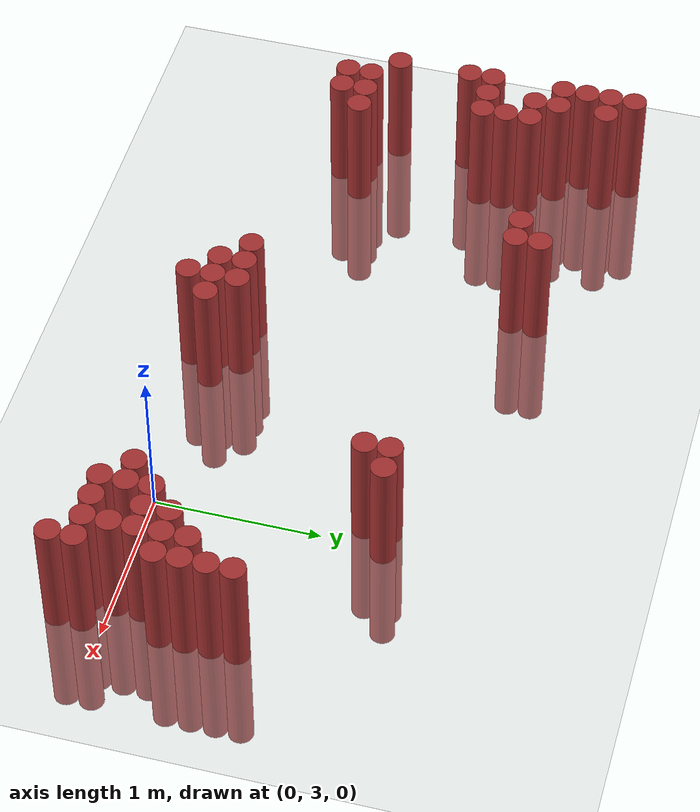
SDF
<sdf version="1.6">
 <world name="default">
  <model name="ground_plane">
   <static>1</static>
   <link name="link">
    <collision name="collision">
     <geometry><plane><normal>0 0 1</normal><size>100 100</size></plane></geometry>
     <surface><friction><ode><mu>100</mu><mu2>50</mu2></ode></friction></surface>
    </collision>
    <visual name="visual">
     <cast_shadows>0</cast_shadows>
     <geometry><plane><normal>0 0 1</normal><size>100 100</size></plane></geometry>
     <material>
      <script><uri>file://media/materials/scripts/gazebo.material</uri><name>Gazebo/Grey</name></script>
     </material>
    </visual>
   </link>
  </model>
  <model name="unit_cylinder_273">
   <static>1</static>
   <pose>-3.275000 3.625000 0.000000 0.000000 0.000000 0.000000</pose>
   <link name="link">
    <inertial>
     <mass>1</mass>
     <inertia><ixx>0.145833</ixx><ixy>0</ixy><ixz>0</ixz><iyy>0.145833</iyy><iyz>0</iyz><izz>0.125</izz></inertia>
    </inertial>
    <collision name="collision">
     <geometry><cylinder><radius>0.075000</radius><length>1.5</length></cylinder></geometry>
    </collision>
    <visual name="visual">
     <geometry><cylinder><radius>0.075000</radius><length>1.5</length></cylinder></geometry>
     <material>
      <ambient>0.648000 0.192000 0.192000 1</ambient>
      <diffuse>0.648000 0.192000 0.192000 1</diffuse>
     </material>
     <material>
      <script><name>Gazebo/Grey</name><uri>file://media/materials/scripts/gazebo.material</uri></script>
     </material>
    </visual>
   </link>
  </model>
  <model name="unit_cylinder_274">
   <static>1</static>
   <pose>-3.275000 4.075000 0.000000 0.000000 0.000000 0.000000</pose>
   <link name="link">
    <inertial>
     <mass>1</mass>
     <inertia><ixx>0.145833</ixx><ixy>0</ixy><ixz>0</ixz><iyy>0.145833</iyy><iyz>0</iyz><izz>0.125</izz></inertia>
    </inertial>
    <collision name="collision">
     <geometry><cylinder><radius>0.075000</radius><length>1.5</length></cylinder></geometry>
    </collision>
    <visual name="visual">
     <geometry><cylinder><radius>0.075000</radius><length>1.5</length></cylinder></geometry>
     <material>
      <ambient>0.648000 0.192000 0.192000 1</ambient>
      <diffuse>0.648000 0.192000 0.192000 1</diffuse>
     </material>
     <material>
      <script><name>Gazebo/Grey</name><uri>file://media/materials/scripts/gazebo.material</uri></script>
     </material>
    </visual>
   </link>
  </model>
  <model name="unit_cylinder_275">
   <static>1</static>
   <pose>-3.275000 4.225000 0.000000 0.000000 0.000000 0.000000</pose>
   <link name="link">
    <inertial>
     <mass>1</mass>
     <inertia><ixx>0.145833</ixx><ixy>0</ixy><ixz>0</ixz><iyy>0.145833</iyy><iyz>0</iyz><izz>0.125</izz></inertia>
    </inertial>
    <collision name="collision">
     <geometry><cylinder><radius>0.075000</radius><length>1.5</length></cylinder></geometry>
    </collision>
    <visual name="visual">
     <geometry><cylinder><radius>0.075000</radius><length>1.5</length></cylinder></geometry>
     <material>
      <ambient>0.648000 0.192000 0.192000 1</ambient>
      <diffuse>0.648000 0.192000 0.192000 1</diffuse>
     </material>
     <material>
      <script><name>Gazebo/Grey</name><uri>file://media/materials/scripts/gazebo.material</uri></script>
     </material>
    </visual>
   </link>
  </model>
  <model name="unit_cylinder_276">
   <static>1</static>
   <pose>-3.275000 4.675000 0.000000 0.000000 0.000000 0.000000</pose>
   <link name="link">
    <inertial>
     <mass>1</mass>
     <inertia><ixx>0.145833</ixx><ixy>0</ixy><ixz>0</ixz><iyy>0.145833</iyy><iyz>0</iyz><izz>0.125</izz></inertia>
    </inertial>
    <collision name="collision">
     <geometry><cylinder><radius>0.075000</radius><length>1.5</length></cylinder></geometry>
    </collision>
    <visual name="visual">
     <geometry><cylinder><radius>0.075000</radius><length>1.5</length></cylinder></geometry>
     <material>
      <ambient>0.648000 0.192000 0.192000 1</ambient>
      <diffuse>0.648000 0.192000 0.192000 1</diffuse>
     </material>
     <material>
      <script><name>Gazebo/Grey</name><uri>file://media/materials/scripts/gazebo.material</uri></script>
     </material>
    </visual>
   </link>
  </model>
  <model name="unit_cylinder_277">
   <static>1</static>
   <pose>-3.275000 4.825000 0.000000 0.000000 0.000000 0.000000</pose>
   <link name="link">
    <inertial>
     <mass>1</mass>
     <inertia><ixx>0.145833</ixx><ixy>0</ixy><ixz>0</ixz><iyy>0.145833</iyy><iyz>0</iyz><izz>0.125</izz></inertia>
    </inertial>
    <collision name="collision">
     <geometry><cylinder><radius>0.075000</radius><length>1.5</length></cylinder></geometry>
    </collision>
    <visual name="visual">
     <geometry><cylinder><radius>0.075000</radius><length>1.5</length></cylinder></geometry>
     <material>
      <ambient>0.648000 0.192000 0.192000 1</ambient>
      <diffuse>0.648000 0.192000 0.192000 1</diffuse>
     </material>
     <material>
      <script><name>Gazebo/Grey</name><uri>file://media/materials/scripts/gazebo.material</uri></script>
     </material>
    </visual>
   </link>
  </model>
  <model name="unit_cylinder_278">
   <static>1</static>
   <pose>-3.275000 4.975000 0.000000 0.000000 0.000000 0.000000</pose>
   <link name="link">
    <inertial>
     <mass>1</mass>
     <inertia><ixx>0.145833</ixx><ixy>0</ixy><ixz>0</ixz><iyy>0.145833</iyy><iyz>0</iyz><izz>0.125</izz></inertia>
    </inertial>
    <collision name="collision">
     <geometry><cylinder><radius>0.075000</radius><length>1.5</length></cylinder></geometry>
    </collision>
    <visual name="visual">
     <geometry><cylinder><radius>0.075000</radius><length>1.5</length></cylinder></geometry>
     <material>
      <ambient>0.648000 0.192000 0.192000 1</ambient>
      <diffuse>0.648000 0.192000 0.192000 1</diffuse>
     </material>
     <material>
      <script><name>Gazebo/Grey</name><uri>file://media/materials/scripts/gazebo.material</uri></script>
     </material>
    </visual>
   </link>
  </model>
  <model name="unit_cylinder_279">
   <static>1</static>
   <pose>-3.275000 5.125000 0.000000 0.000000 0.000000 0.000000</pose>
   <link name="link">
    <inertial>
     <mass>1</mass>
     <inertia><ixx>0.145833</ixx><ixy>0</ixy><ixz>0</ixz><iyy>0.145833</iyy><iyz>0</iyz><izz>0.125</izz></inertia>
    </inertial>
    <collision name="collision">
     <geometry><cylinder><radius>0.075000</radius><length>1.5</length></cylinder></geometry>
    </collision>
    <visual name="visual">
     <geometry><cylinder><radius>0.075000</radius><length>1.5</length></cylinder></geometry>
     <material>
      <ambient>0.648000 0.192000 0.192000 1</ambient>
      <diffuse>0.648000 0.192000 0.192000 1</diffuse>
     </material>
     <material>
      <script><name>Gazebo/Grey</name><uri>file://media/materials/scripts/gazebo.material</uri></script>
     </material>
    </visual>
   </link>
  </model>
  <model name="unit_cylinder_285">
   <static>1</static>
   <pose>-3.125000 3.325000 0.000000 0.000000 0.000000 0.000000</pose>
   <link name="link">
    <inertial>
     <mass>1</mass>
     <inertia><ixx>0.145833</ixx><ixy>0</ixy><ixz>0</ixz><iyy>0.145833</iyy><iyz>0</iyz><izz>0.125</izz></inertia>
    </inertial>
    <collision name="collision">
     <geometry><cylinder><radius>0.075000</radius><length>1.5</length></cylinder></geometry>
    </collision>
    <visual name="visual">
     <geometry><cylinder><radius>0.075000</radius><length>1.5</length></cylinder></geometry>
     <material>
      <ambient>0.648000 0.192000 0.192000 1</ambient>
      <diffuse>0.648000 0.192000 0.192000 1</diffuse>
     </material>
     <material>
      <script><name>Gazebo/Grey</name><uri>file://media/materials/scripts/gazebo.material</uri></script>
     </material>
    </visual>
   </link>
  </model>
  <model name="unit_cylinder_286">
   <static>1</static>
   <pose>-3.125000 3.475000 0.000000 0.000000 0.000000 0.000000</pose>
   <link name="link">
    <inertial>
     <mass>1</mass>
     <inertia><ixx>0.145833</ixx><ixy>0</ixy><ixz>0</ixz><iyy>0.145833</iyy><iyz>0</iyz><izz>0.125</izz></inertia>
    </inertial>
    <collision name="collision">
     <geometry><cylinder><radius>0.075000</radius><length>1.5</length></cylinder></geometry>
    </collision>
    <visual name="visual">
     <geometry><cylinder><radius>0.075000</radius><length>1.5</length></cylinder></geometry>
     <material>
      <ambient>0.648000 0.192000 0.192000 1</ambient>
      <diffuse>0.648000 0.192000 0.192000 1</diffuse>
     </material>
     <material>
      <script><name>Gazebo/Grey</name><uri>file://media/materials/scripts/gazebo.material</uri></script>
     </material>
    </visual>
   </link>
  </model>
  <model name="unit_cylinder_287">
   <static>1</static>
   <pose>-3.125000 4.225000 0.000000 0.000000 0.000000 0.000000</pose>
   <link name="link">
    <inertial>
     <mass>1</mass>
     <inertia><ixx>0.145833</ixx><ixy>0</ixy><ixz>0</ixz><iyy>0.145833</iyy><iyz>0</iyz><izz>0.125</izz></inertia>
    </inertial>
    <collision name="collision">
     <geometry><cylinder><radius>0.075000</radius><length>1.5</length></cylinder></geometry>
    </collision>
    <visual name="visual">
     <geometry><cylinder><radius>0.075000</radius><length>1.5</length></cylinder></geometry>
     <material>
      <ambient>0.648000 0.192000 0.192000 1</ambient>
      <diffuse>0.648000 0.192000 0.192000 1</diffuse>
     </material>
     <material>
      <script><name>Gazebo/Grey</name><uri>file://media/materials/scripts/gazebo.material</uri></script>
     </material>
    </visual>
   </link>
  </model>
  <model name="unit_cylinder_288">
   <static>1</static>
   <pose>-3.125000 4.525000 0.000000 0.000000 0.000000 0.000000</pose>
   <link name="link">
    <inertial>
     <mass>1</mass>
     <inertia><ixx>0.145833</ixx><ixy>0</ixy><ixz>0</ixz><iyy>0.145833</iyy><iyz>0</iyz><izz>0.125</izz></inertia>
    </inertial>
    <collision name="collision">
     <geometry><cylinder><radius>0.075000</radius><length>1.5</length></cylinder></geometry>
    </collision>
    <visual name="visual">
     <geometry><cylinder><radius>0.075000</radius><length>1.5</length></cylinder></geometry>
     <material>
      <ambient>0.648000 0.192000 0.192000 1</ambient>
      <diffuse>0.648000 0.192000 0.192000 1</diffuse>
     </material>
     <material>
      <script><name>Gazebo/Grey</name><uri>file://media/materials/scripts/gazebo.material</uri></script>
     </material>
    </visual>
   </link>
  </model>
  <model name="unit_cylinder_289">
   <static>1</static>
   <pose>-3.125000 4.675000 0.000000 0.000000 0.000000 0.000000</pose>
   <link name="link">
    <inertial>
     <mass>1</mass>
     <inertia><ixx>0.145833</ixx><ixy>0</ixy><ixz>0</ixz><iyy>0.145833</iyy><iyz>0</iyz><izz>0.125</izz></inertia>
    </inertial>
    <collision name="collision">
     <geometry><cylinder><radius>0.075000</radius><length>1.5</length></cylinder></geometry>
    </collision>
    <visual name="visual">
     <geometry><cylinder><radius>0.075000</radius><length>1.5</length></cylinder></geometry>
     <material>
      <ambient>0.648000 0.192000 0.192000 1</ambient>
      <diffuse>0.648000 0.192000 0.192000 1</diffuse>
     </material>
     <material>
      <script><name>Gazebo/Grey</name><uri>file://media/materials/scripts/gazebo.material</uri></script>
     </material>
    </visual>
   </link>
  </model>
  <model name="unit_cylinder_290">
   <static>1</static>
   <pose>-3.125000 4.975000 0.000000 0.000000 0.000000 0.000000</pose>
   <link name="link">
    <inertial>
     <mass>1</mass>
     <inertia><ixx>0.145833</ixx><ixy>0</ixy><ixz>0</ixz><iyy>0.145833</iyy><iyz>0</iyz><izz>0.125</izz></inertia>
    </inertial>
    <collision name="collision">
     <geometry><cylinder><radius>0.075000</radius><length>1.5</length></cylinder></geometry>
    </collision>
    <visual name="visual">
     <geometry><cylinder><radius>0.075000</radius><length>1.5</length></cylinder></geometry>
     <material>
      <ambient>0.648000 0.192000 0.192000 1</ambient>
      <diffuse>0.648000 0.192000 0.192000 1</diffuse>
     </material>
     <material>
      <script><name>Gazebo/Grey</name><uri>file://media/materials/scripts/gazebo.material</uri></script>
     </material>
    </visual>
   </link>
  </model>
  <model name="unit_cylinder_293">
   <static>1</static>
   <pose>-2.975000 3.325000 0.000000 0.000000 0.000000 0.000000</pose>
   <link name="link">
    <inertial>
     <mass>1</mass>
     <inertia><ixx>0.145833</ixx><ixy>0</ixy><ixz>0</ixz><iyy>0.145833</iyy><iyz>0</iyz><izz>0.125</izz></inertia>
    </inertial>
    <collision name="collision">
     <geometry><cylinder><radius>0.075000</radius><length>1.5</length></cylinder></geometry>
    </collision>
    <visual name="visual">
     <geometry><cylinder><radius>0.075000</radius><length>1.5</length></cylinder></geometry>
     <material>
      <ambient>0.648000 0.192000 0.192000 1</ambient>
      <diffuse>0.648000 0.192000 0.192000 1</diffuse>
     </material>
     <material>
      <script><name>Gazebo/Grey</name><uri>file://media/materials/scripts/gazebo.material</uri></script>
     </material>
    </visual>
   </link>
  </model>
  <model name="unit_cylinder_294">
   <static>1</static>
   <pose>-2.975000 3.475000 0.000000 0.000000 0.000000 0.000000</pose>
   <link name="link">
    <inertial>
     <mass>1</mass>
     <inertia><ixx>0.145833</ixx><ixy>0</ixy><ixz>0</ixz><iyy>0.145833</iyy><iyz>0</iyz><izz>0.125</izz></inertia>
    </inertial>
    <collision name="collision">
     <geometry><cylinder><radius>0.075000</radius><length>1.5</length></cylinder></geometry>
    </collision>
    <visual name="visual">
     <geometry><cylinder><radius>0.075000</radius><length>1.5</length></cylinder></geometry>
     <material>
      <ambient>0.648000 0.192000 0.192000 1</ambient>
      <diffuse>0.648000 0.192000 0.192000 1</diffuse>
     </material>
     <material>
      <script><name>Gazebo/Grey</name><uri>file://media/materials/scripts/gazebo.material</uri></script>
     </material>
    </visual>
   </link>
  </model>
  <model name="unit_cylinder_295">
   <static>1</static>
   <pose>-2.975000 4.225000 0.000000 0.000000 0.000000 0.000000</pose>
   <link name="link">
    <inertial>
     <mass>1</mass>
     <inertia><ixx>0.145833</ixx><ixy>0</ixy><ixz>0</ixz><iyy>0.145833</iyy><iyz>0</iyz><izz>0.125</izz></inertia>
    </inertial>
    <collision name="collision">
     <geometry><cylinder><radius>0.075000</radius><length>1.5</length></cylinder></geometry>
    </collision>
    <visual name="visual">
     <geometry><cylinder><radius>0.075000</radius><length>1.5</length></cylinder></geometry>
     <material>
      <ambient>0.648000 0.192000 0.192000 1</ambient>
      <diffuse>0.648000 0.192000 0.192000 1</diffuse>
     </material>
     <material>
      <script><name>Gazebo/Grey</name><uri>file://media/materials/scripts/gazebo.material</uri></script>
     </material>
    </visual>
   </link>
  </model>
  <model name="unit_cylinder_296">
   <static>1</static>
   <pose>-2.975000 4.375000 0.000000 0.000000 0.000000 0.000000</pose>
   <link name="link">
    <inertial>
     <mass>1</mass>
     <inertia><ixx>0.145833</ixx><ixy>0</ixy><ixz>0</ixz><iyy>0.145833</iyy><iyz>0</iyz><izz>0.125</izz></inertia>
    </inertial>
    <collision name="collision">
     <geometry><cylinder><radius>0.075000</radius><length>1.5</length></cylinder></geometry>
    </collision>
    <visual name="visual">
     <geometry><cylinder><radius>0.075000</radius><length>1.5</length></cylinder></geometry>
     <material>
      <ambient>0.648000 0.192000 0.192000 1</ambient>
      <diffuse>0.648000 0.192000 0.192000 1</diffuse>
     </material>
     <material>
      <script><name>Gazebo/Grey</name><uri>file://media/materials/scripts/gazebo.material</uri></script>
     </material>
    </visual>
   </link>
  </model>
  <model name="unit_cylinder_297">
   <static>1</static>
   <pose>-2.975000 4.525000 0.000000 0.000000 0.000000 0.000000</pose>
   <link name="link">
    <inertial>
     <mass>1</mass>
     <inertia><ixx>0.145833</ixx><ixy>0</ixy><ixz>0</ixz><iyy>0.145833</iyy><iyz>0</iyz><izz>0.125</izz></inertia>
    </inertial>
    <collision name="collision">
     <geometry><cylinder><radius>0.075000</radius><length>1.5</length></cylinder></geometry>
    </collision>
    <visual name="visual">
     <geometry><cylinder><radius>0.075000</radius><length>1.5</length></cylinder></geometry>
     <material>
      <ambient>0.648000 0.192000 0.192000 1</ambient>
      <diffuse>0.648000 0.192000 0.192000 1</diffuse>
     </material>
     <material>
      <script><name>Gazebo/Grey</name><uri>file://media/materials/scripts/gazebo.material</uri></script>
     </material>
    </visual>
   </link>
  </model>
  <model name="unit_cylinder_300">
   <static>1</static>
   <pose>-2.825000 3.475000 0.000000 0.000000 0.000000 0.000000</pose>
   <link name="link">
    <inertial>
     <mass>1</mass>
     <inertia><ixx>0.145833</ixx><ixy>0</ixy><ixz>0</ixz><iyy>0.145833</iyy><iyz>0</iyz><izz>0.125</izz></inertia>
    </inertial>
    <collision name="collision">
     <geometry><cylinder><radius>0.075000</radius><length>1.5</length></cylinder></geometry>
    </collision>
    <visual name="visual">
     <geometry><cylinder><radius>0.075000</radius><length>1.5</length></cylinder></geometry>
     <material>
      <ambient>0.648000 0.192000 0.192000 1</ambient>
      <diffuse>0.648000 0.192000 0.192000 1</diffuse>
     </material>
     <material>
      <script><name>Gazebo/Grey</name><uri>file://media/materials/scripts/gazebo.material</uri></script>
     </material>
    </visual>
   </link>
  </model>
  <model name="unit_cylinder_302">
   <static>1</static>
   <pose>-2.075000 4.675000 0.000000 0.000000 0.000000 0.000000</pose>
   <link name="link">
    <inertial>
     <mass>1</mass>
     <inertia><ixx>0.145833</ixx><ixy>0</ixy><ixz>0</ixz><iyy>0.145833</iyy><iyz>0</iyz><izz>0.125</izz></inertia>
    </inertial>
    <collision name="collision">
     <geometry><cylinder><radius>0.075000</radius><length>1.5</length></cylinder></geometry>
    </collision>
    <visual name="visual">
     <geometry><cylinder><radius>0.075000</radius><length>1.5</length></cylinder></geometry>
     <material>
      <ambient>0.648000 0.192000 0.192000 1</ambient>
      <diffuse>0.648000 0.192000 0.192000 1</diffuse>
     </material>
     <material>
      <script><name>Gazebo/Grey</name><uri>file://media/materials/scripts/gazebo.material</uri></script>
     </material>
    </visual>
   </link>
  </model>
  <model name="unit_cylinder_303">
   <static>1</static>
   <pose>-1.925000 4.675000 0.000000 0.000000 0.000000 0.000000</pose>
   <link name="link">
    <inertial>
     <mass>1</mass>
     <inertia><ixx>0.145833</ixx><ixy>0</ixy><ixz>0</ixz><iyy>0.145833</iyy><iyz>0</iyz><izz>0.125</izz></inertia>
    </inertial>
    <collision name="collision">
     <geometry><cylinder><radius>0.075000</radius><length>1.5</length></cylinder></geometry>
    </collision>
    <visual name="visual">
     <geometry><cylinder><radius>0.075000</radius><length>1.5</length></cylinder></geometry>
     <material>
      <ambient>0.648000 0.192000 0.192000 1</ambient>
      <diffuse>0.648000 0.192000 0.192000 1</diffuse>
     </material>
     <material>
      <script><name>Gazebo/Grey</name><uri>file://media/materials/scripts/gazebo.material</uri></script>
     </material>
    </visual>
   </link>
  </model>
  <model name="unit_cylinder_304">
   <static>1</static>
   <pose>-1.925000 4.825000 0.000000 0.000000 0.000000 0.000000</pose>
   <link name="link">
    <inertial>
     <mass>1</mass>
     <inertia><ixx>0.145833</ixx><ixy>0</ixy><ixz>0</ixz><iyy>0.145833</iyy><iyz>0</iyz><izz>0.125</izz></inertia>
    </inertial>
    <collision name="collision">
     <geometry><cylinder><radius>0.075000</radius><length>1.5</length></cylinder></geometry>
    </collision>
    <visual name="visual">
     <geometry><cylinder><radius>0.075000</radius><length>1.5</length></cylinder></geometry>
     <material>
      <ambient>0.648000 0.192000 0.192000 1</ambient>
      <diffuse>0.648000 0.192000 0.192000 1</diffuse>
     </material>
     <material>
      <script><name>Gazebo/Grey</name><uri>file://media/materials/scripts/gazebo.material</uri></script>
     </material>
    </visual>
   </link>
  </model>
  <model name="unit_cylinder_305">
   <static>1</static>
   <pose>-1.475000 3.175000 0.000000 0.000000 0.000000 0.000000</pose>
   <link name="link">
    <inertial>
     <mass>1</mass>
     <inertia><ixx>0.145833</ixx><ixy>0</ixy><ixz>0</ixz><iyy>0.145833</iyy><iyz>0</iyz><izz>0.125</izz></inertia>
    </inertial>
    <collision name="collision">
     <geometry><cylinder><radius>0.075000</radius><length>1.5</length></cylinder></geometry>
    </collision>
    <visual name="visual">
     <geometry><cylinder><radius>0.075000</radius><length>1.5</length></cylinder></geometry>
     <material>
      <ambient>0.648000 0.192000 0.192000 1</ambient>
      <diffuse>0.648000 0.192000 0.192000 1</diffuse>
     </material>
     <material>
      <script><name>Gazebo/Grey</name><uri>file://media/materials/scripts/gazebo.material</uri></script>
     </material>
    </visual>
   </link>
  </model>
  <model name="unit_cylinder_308">
   <static>1</static>
   <pose>-1.325000 3.025000 0.000000 0.000000 0.000000 0.000000</pose>
   <link name="link">
    <inertial>
     <mass>1</mass>
     <inertia><ixx>0.145833</ixx><ixy>0</ixy><ixz>0</ixz><iyy>0.145833</iyy><iyz>0</iyz><izz>0.125</izz></inertia>
    </inertial>
    <collision name="collision">
     <geometry><cylinder><radius>0.075000</radius><length>1.5</length></cylinder></geometry>
    </collision>
    <visual name="visual">
     <geometry><cylinder><radius>0.075000</radius><length>1.5</length></cylinder></geometry>
     <material>
      <ambient>0.648000 0.192000 0.192000 1</ambient>
      <diffuse>0.648000 0.192000 0.192000 1</diffuse>
     </material>
     <material>
      <script><name>Gazebo/Grey</name><uri>file://media/materials/scripts/gazebo.material</uri></script>
     </material>
    </visual>
   </link>
  </model>
  <model name="unit_cylinder_309">
   <static>1</static>
   <pose>-1.325000 3.175000 0.000000 0.000000 0.000000 0.000000</pose>
   <link name="link">
    <inertial>
     <mass>1</mass>
     <inertia><ixx>0.145833</ixx><ixy>0</ixy><ixz>0</ixz><iyy>0.145833</iyy><iyz>0</iyz><izz>0.125</izz></inertia>
    </inertial>
    <collision name="collision">
     <geometry><cylinder><radius>0.075000</radius><length>1.5</length></cylinder></geometry>
    </collision>
    <visual name="visual">
     <geometry><cylinder><radius>0.075000</radius><length>1.5</length></cylinder></geometry>
     <material>
      <ambient>0.648000 0.192000 0.192000 1</ambient>
      <diffuse>0.648000 0.192000 0.192000 1</diffuse>
     </material>
     <material>
      <script><name>Gazebo/Grey</name><uri>file://media/materials/scripts/gazebo.material</uri></script>
     </material>
    </visual>
   </link>
  </model>
  <model name="unit_cylinder_314">
   <static>1</static>
   <pose>-1.175000 2.875000 0.000000 0.000000 0.000000 0.000000</pose>
   <link name="link">
    <inertial>
     <mass>1</mass>
     <inertia><ixx>0.145833</ixx><ixy>0</ixy><ixz>0</ixz><iyy>0.145833</iyy><iyz>0</iyz><izz>0.125</izz></inertia>
    </inertial>
    <collision name="collision">
     <geometry><cylinder><radius>0.075000</radius><length>1.5</length></cylinder></geometry>
    </collision>
    <visual name="visual">
     <geometry><cylinder><radius>0.075000</radius><length>1.5</length></cylinder></geometry>
     <material>
      <ambient>0.648000 0.192000 0.192000 1</ambient>
      <diffuse>0.648000 0.192000 0.192000 1</diffuse>
     </material>
     <material>
      <script><name>Gazebo/Grey</name><uri>file://media/materials/scripts/gazebo.material</uri></script>
     </material>
    </visual>
   </link>
  </model>
  <model name="unit_cylinder_315">
   <static>1</static>
   <pose>-1.175000 3.025000 0.000000 0.000000 0.000000 0.000000</pose>
   <link name="link">
    <inertial>
     <mass>1</mass>
     <inertia><ixx>0.145833</ixx><ixy>0</ixy><ixz>0</ixz><iyy>0.145833</iyy><iyz>0</iyz><izz>0.125</izz></inertia>
    </inertial>
    <collision name="collision">
     <geometry><cylinder><radius>0.075000</radius><length>1.5</length></cylinder></geometry>
    </collision>
    <visual name="visual">
     <geometry><cylinder><radius>0.075000</radius><length>1.5</length></cylinder></geometry>
     <material>
      <ambient>0.648000 0.192000 0.192000 1</ambient>
      <diffuse>0.648000 0.192000 0.192000 1</diffuse>
     </material>
     <material>
      <script><name>Gazebo/Grey</name><uri>file://media/materials/scripts/gazebo.material</uri></script>
     </material>
    </visual>
   </link>
  </model>
  <model name="unit_cylinder_316">
   <static>1</static>
   <pose>-1.175000 3.175000 0.000000 0.000000 0.000000 0.000000</pose>
   <link name="link">
    <inertial>
     <mass>1</mass>
     <inertia><ixx>0.145833</ixx><ixy>0</ixy><ixz>0</ixz><iyy>0.145833</iyy><iyz>0</iyz><izz>0.125</izz></inertia>
    </inertial>
    <collision name="collision">
     <geometry><cylinder><radius>0.075000</radius><length>1.5</length></cylinder></geometry>
    </collision>
    <visual name="visual">
     <geometry><cylinder><radius>0.075000</radius><length>1.5</length></cylinder></geometry>
     <material>
      <ambient>0.648000 0.192000 0.192000 1</ambient>
      <diffuse>0.648000 0.192000 0.192000 1</diffuse>
     </material>
     <material>
      <script><name>Gazebo/Grey</name><uri>file://media/materials/scripts/gazebo.material</uri></script>
     </material>
    </visual>
   </link>
  </model>
  <model name="unit_cylinder_320">
   <static>1</static>
   <pose>-1.025000 3.025000 0.000000 0.000000 0.000000 0.000000</pose>
   <link name="link">
    <inertial>
     <mass>1</mass>
     <inertia><ixx>0.145833</ixx><ixy>0</ixy><ixz>0</ixz><iyy>0.145833</iyy><iyz>0</iyz><izz>0.125</izz></inertia>
    </inertial>
    <collision name="collision">
     <geometry><cylinder><radius>0.075000</radius><length>1.5</length></cylinder></geometry>
    </collision>
    <visual name="visual">
     <geometry><cylinder><radius>0.075000</radius><length>1.5</length></cylinder></geometry>
     <material>
      <ambient>0.648000 0.192000 0.192000 1</ambient>
      <diffuse>0.648000 0.192000 0.192000 1</diffuse>
     </material>
     <material>
      <script><name>Gazebo/Grey</name><uri>file://media/materials/scripts/gazebo.material</uri></script>
     </material>
    </visual>
   </link>
  </model>
  <model name="unit_cylinder_335">
   <static>1</static>
   <pose>-0.125000 4.225000 0.000000 0.000000 0.000000 0.000000</pose>
   <link name="link">
    <inertial>
     <mass>1</mass>
     <inertia><ixx>0.145833</ixx><ixy>0</ixy><ixz>0</ixz><iyy>0.145833</iyy><iyz>0</iyz><izz>0.125</izz></inertia>
    </inertial>
    <collision name="collision">
     <geometry><cylinder><radius>0.075000</radius><length>1.5</length></cylinder></geometry>
    </collision>
    <visual name="visual">
     <geometry><cylinder><radius>0.075000</radius><length>1.5</length></cylinder></geometry>
     <material>
      <ambient>0.648000 0.192000 0.192000 1</ambient>
      <diffuse>0.648000 0.192000 0.192000 1</diffuse>
     </material>
     <material>
      <script><name>Gazebo/Grey</name><uri>file://media/materials/scripts/gazebo.material</uri></script>
     </material>
    </visual>
   </link>
  </model>
  <model name="unit_cylinder_336">
   <static>1</static>
   <pose>-0.125000 4.375000 0.000000 0.000000 0.000000 0.000000</pose>
   <link name="link">
    <inertial>
     <mass>1</mass>
     <inertia><ixx>0.145833</ixx><ixy>0</ixy><ixz>0</ixz><iyy>0.145833</iyy><iyz>0</iyz><izz>0.125</izz></inertia>
    </inertial>
    <collision name="collision">
     <geometry><cylinder><radius>0.075000</radius><length>1.5</length></cylinder></geometry>
    </collision>
    <visual name="visual">
     <geometry><cylinder><radius>0.075000</radius><length>1.5</length></cylinder></geometry>
     <material>
      <ambient>0.648000 0.192000 0.192000 1</ambient>
      <diffuse>0.648000 0.192000 0.192000 1</diffuse>
     </material>
     <material>
      <script><name>Gazebo/Grey</name><uri>file://media/materials/scripts/gazebo.material</uri></script>
     </material>
    </visual>
   </link>
  </model>
  <model name="unit_cylinder_338">
   <static>1</static>
   <pose>0.025000 4.375000 0.000000 0.000000 0.000000 0.000000</pose>
   <link name="link">
    <inertial>
     <mass>1</mass>
     <inertia><ixx>0.145833</ixx><ixy>0</ixy><ixz>0</ixz><iyy>0.145833</iyy><iyz>0</iyz><izz>0.125</izz></inertia>
    </inertial>
    <collision name="collision">
     <geometry><cylinder><radius>0.075000</radius><length>1.5</length></cylinder></geometry>
    </collision>
    <visual name="visual">
     <geometry><cylinder><radius>0.075000</radius><length>1.5</length></cylinder></geometry>
     <material>
      <ambient>0.648000 0.192000 0.192000 1</ambient>
      <diffuse>0.648000 0.192000 0.192000 1</diffuse>
     </material>
     <material>
      <script><name>Gazebo/Grey</name><uri>file://media/materials/scripts/gazebo.material</uri></script>
     </material>
    </visual>
   </link>
  </model>
  <model name="unit_cylinder_339">
   <static>1</static>
   <pose>0.325000 3.025000 0.000000 0.000000 0.000000 0.000000</pose>
   <link name="link">
    <inertial>
     <mass>1</mass>
     <inertia><ixx>0.145833</ixx><ixy>0</ixy><ixz>0</ixz><iyy>0.145833</iyy><iyz>0</iyz><izz>0.125</izz></inertia>
    </inertial>
    <collision name="collision">
     <geometry><cylinder><radius>0.075000</radius><length>1.5</length></cylinder></geometry>
    </collision>
    <visual name="visual">
     <geometry><cylinder><radius>0.075000</radius><length>1.5</length></cylinder></geometry>
     <material>
      <ambient>0.648000 0.192000 0.192000 1</ambient>
      <diffuse>0.648000 0.192000 0.192000 1</diffuse>
     </material>
     <material>
      <script><name>Gazebo/Grey</name><uri>file://media/materials/scripts/gazebo.material</uri></script>
     </material>
    </visual>
   </link>
  </model>
  <model name="unit_cylinder_340">
   <static>1</static>
   <pose>0.475000 2.875000 0.000000 0.000000 0.000000 0.000000</pose>
   <link name="link">
    <inertial>
     <mass>1</mass>
     <inertia><ixx>0.145833</ixx><ixy>0</ixy><ixz>0</ixz><iyy>0.145833</iyy><iyz>0</iyz><izz>0.125</izz></inertia>
    </inertial>
    <collision name="collision">
     <geometry><cylinder><radius>0.075000</radius><length>1.5</length></cylinder></geometry>
    </collision>
    <visual name="visual">
     <geometry><cylinder><radius>0.075000</radius><length>1.5</length></cylinder></geometry>
     <material>
      <ambient>0.648000 0.192000 0.192000 1</ambient>
      <diffuse>0.648000 0.192000 0.192000 1</diffuse>
     </material>
     <material>
      <script><name>Gazebo/Grey</name><uri>file://media/materials/scripts/gazebo.material</uri></script>
     </material>
    </visual>
   </link>
  </model>
  <model name="unit_cylinder_341">
   <static>1</static>
   <pose>0.475000 3.025000 0.000000 0.000000 0.000000 0.000000</pose>
   <link name="link">
    <inertial>
     <mass>1</mass>
     <inertia><ixx>0.145833</ixx><ixy>0</ixy><ixz>0</ixz><iyy>0.145833</iyy><iyz>0</iyz><izz>0.125</izz></inertia>
    </inertial>
    <collision name="collision">
     <geometry><cylinder><radius>0.075000</radius><length>1.5</length></cylinder></geometry>
    </collision>
    <visual name="visual">
     <geometry><cylinder><radius>0.075000</radius><length>1.5</length></cylinder></geometry>
     <material>
      <ambient>0.648000 0.192000 0.192000 1</ambient>
      <diffuse>0.648000 0.192000 0.192000 1</diffuse>
     </material>
     <material>
      <script><name>Gazebo/Grey</name><uri>file://media/materials/scripts/gazebo.material</uri></script>
     </material>
    </visual>
   </link>
  </model>
  <model name="unit_cylinder_342">
   <static>1</static>
   <pose>0.475000 3.175000 0.000000 0.000000 0.000000 0.000000</pose>
   <link name="link">
    <inertial>
     <mass>1</mass>
     <inertia><ixx>0.145833</ixx><ixy>0</ixy><ixz>0</ixz><iyy>0.145833</iyy><iyz>0</iyz><izz>0.125</izz></inertia>
    </inertial>
    <collision name="collision">
     <geometry><cylinder><radius>0.075000</radius><length>1.5</length></cylinder></geometry>
    </collision>
    <visual name="visual">
     <geometry><cylinder><radius>0.075000</radius><length>1.5</length></cylinder></geometry>
     <material>
      <ambient>0.648000 0.192000 0.192000 1</ambient>
      <diffuse>0.648000 0.192000 0.192000 1</diffuse>
     </material>
     <material>
      <script><name>Gazebo/Grey</name><uri>file://media/materials/scripts/gazebo.material</uri></script>
     </material>
    </visual>
   </link>
  </model>
  <model name="unit_cylinder_343">
   <static>1</static>
   <pose>0.625000 2.875000 0.000000 0.000000 0.000000 0.000000</pose>
   <link name="link">
    <inertial>
     <mass>1</mass>
     <inertia><ixx>0.145833</ixx><ixy>0</ixy><ixz>0</ixz><iyy>0.145833</iyy><iyz>0</iyz><izz>0.125</izz></inertia>
    </inertial>
    <collision name="collision">
     <geometry><cylinder><radius>0.075000</radius><length>1.5</length></cylinder></geometry>
    </collision>
    <visual name="visual">
     <geometry><cylinder><radius>0.075000</radius><length>1.5</length></cylinder></geometry>
     <material>
      <ambient>0.648000 0.192000 0.192000 1</ambient>
      <diffuse>0.648000 0.192000 0.192000 1</diffuse>
     </material>
     <material>
      <script><name>Gazebo/Grey</name><uri>file://media/materials/scripts/gazebo.material</uri></script>
     </material>
    </visual>
   </link>
  </model>
  <model name="unit_cylinder_344">
   <static>1</static>
   <pose>0.625000 3.175000 0.000000 0.000000 0.000000 0.000000</pose>
   <link name="link">
    <inertial>
     <mass>1</mass>
     <inertia><ixx>0.145833</ixx><ixy>0</ixy><ixz>0</ixz><iyy>0.145833</iyy><iyz>0</iyz><izz>0.125</izz></inertia>
    </inertial>
    <collision name="collision">
     <geometry><cylinder><radius>0.075000</radius><length>1.5</length></cylinder></geometry>
    </collision>
    <visual name="visual">
     <geometry><cylinder><radius>0.075000</radius><length>1.5</length></cylinder></geometry>
     <material>
      <ambient>0.648000 0.192000 0.192000 1</ambient>
      <diffuse>0.648000 0.192000 0.192000 1</diffuse>
     </material>
     <material>
      <script><name>Gazebo/Grey</name><uri>file://media/materials/scripts/gazebo.material</uri></script>
     </material>
    </visual>
   </link>
  </model>
  <model name="unit_cylinder_345">
   <static>1</static>
   <pose>0.625000 3.325000 0.000000 0.000000 0.000000 0.000000</pose>
   <link name="link">
    <inertial>
     <mass>1</mass>
     <inertia><ixx>0.145833</ixx><ixy>0</ixy><ixz>0</ixz><iyy>0.145833</iyy><iyz>0</iyz><izz>0.125</izz></inertia>
    </inertial>
    <collision name="collision">
     <geometry><cylinder><radius>0.075000</radius><length>1.5</length></cylinder></geometry>
    </collision>
    <visual name="visual">
     <geometry><cylinder><radius>0.075000</radius><length>1.5</length></cylinder></geometry>
     <material>
      <ambient>0.648000 0.192000 0.192000 1</ambient>
      <diffuse>0.648000 0.192000 0.192000 1</diffuse>
     </material>
     <material>
      <script><name>Gazebo/Grey</name><uri>file://media/materials/scripts/gazebo.material</uri></script>
     </material>
    </visual>
   </link>
  </model>
  <model name="unit_cylinder_351">
   <static>1</static>
   <pose>0.775000 2.875000 0.000000 0.000000 0.000000 0.000000</pose>
   <link name="link">
    <inertial>
     <mass>1</mass>
     <inertia><ixx>0.145833</ixx><ixy>0</ixy><ixz>0</ixz><iyy>0.145833</iyy><iyz>0</iyz><izz>0.125</izz></inertia>
    </inertial>
    <collision name="collision">
     <geometry><cylinder><radius>0.075000</radius><length>1.5</length></cylinder></geometry>
    </collision>
    <visual name="visual">
     <geometry><cylinder><radius>0.075000</radius><length>1.5</length></cylinder></geometry>
     <material>
      <ambient>0.648000 0.192000 0.192000 1</ambient>
      <diffuse>0.648000 0.192000 0.192000 1</diffuse>
     </material>
     <material>
      <script><name>Gazebo/Grey</name><uri>file://media/materials/scripts/gazebo.material</uri></script>
     </material>
    </visual>
   </link>
  </model>
  <model name="unit_cylinder_352">
   <static>1</static>
   <pose>0.775000 3.025000 0.000000 0.000000 0.000000 0.000000</pose>
   <link name="link">
    <inertial>
     <mass>1</mass>
     <inertia><ixx>0.145833</ixx><ixy>0</ixy><ixz>0</ixz><iyy>0.145833</iyy><iyz>0</iyz><izz>0.125</izz></inertia>
    </inertial>
    <collision name="collision">
     <geometry><cylinder><radius>0.075000</radius><length>1.5</length></cylinder></geometry>
    </collision>
    <visual name="visual">
     <geometry><cylinder><radius>0.075000</radius><length>1.5</length></cylinder></geometry>
     <material>
      <ambient>0.648000 0.192000 0.192000 1</ambient>
      <diffuse>0.648000 0.192000 0.192000 1</diffuse>
     </material>
     <material>
      <script><name>Gazebo/Grey</name><uri>file://media/materials/scripts/gazebo.material</uri></script>
     </material>
    </visual>
   </link>
  </model>
  <model name="unit_cylinder_353">
   <static>1</static>
   <pose>0.775000 3.175000 0.000000 0.000000 0.000000 0.000000</pose>
   <link name="link">
    <inertial>
     <mass>1</mass>
     <inertia><ixx>0.145833</ixx><ixy>0</ixy><ixz>0</ixz><iyy>0.145833</iyy><iyz>0</iyz><izz>0.125</izz></inertia>
    </inertial>
    <collision name="collision">
     <geometry><cylinder><radius>0.075000</radius><length>1.5</length></cylinder></geometry>
    </collision>
    <visual name="visual">
     <geometry><cylinder><radius>0.075000</radius><length>1.5</length></cylinder></geometry>
     <material>
      <ambient>0.648000 0.192000 0.192000 1</ambient>
      <diffuse>0.648000 0.192000 0.192000 1</diffuse>
     </material>
     <material>
      <script><name>Gazebo/Grey</name><uri>file://media/materials/scripts/gazebo.material</uri></script>
     </material>
    </visual>
   </link>
  </model>
  <model name="unit_cylinder_354">
   <static>1</static>
   <pose>0.775000 3.325000 0.000000 0.000000 0.000000 0.000000</pose>
   <link name="link">
    <inertial>
     <mass>1</mass>
     <inertia><ixx>0.145833</ixx><ixy>0</ixy><ixz>0</ixz><iyy>0.145833</iyy><iyz>0</iyz><izz>0.125</izz></inertia>
    </inertial>
    <collision name="collision">
     <geometry><cylinder><radius>0.075000</radius><length>1.5</length></cylinder></geometry>
    </collision>
    <visual name="visual">
     <geometry><cylinder><radius>0.075000</radius><length>1.5</length></cylinder></geometry>
     <material>
      <ambient>0.648000 0.192000 0.192000 1</ambient>
      <diffuse>0.648000 0.192000 0.192000 1</diffuse>
     </material>
     <material>
      <script><name>Gazebo/Grey</name><uri>file://media/materials/scripts/gazebo.material</uri></script>
     </material>
    </visual>
   </link>
  </model>
  <model name="unit_cylinder_355">
   <static>1</static>
   <pose>0.775000 3.475000 0.000000 0.000000 0.000000 0.000000</pose>
   <link name="link">
    <inertial>
     <mass>1</mass>
     <inertia><ixx>0.145833</ixx><ixy>0</ixy><ixz>0</ixz><iyy>0.145833</iyy><iyz>0</iyz><izz>0.125</izz></inertia>
    </inertial>
    <collision name="collision">
     <geometry><cylinder><radius>0.075000</radius><length>1.5</length></cylinder></geometry>
    </collision>
    <visual name="visual">
     <geometry><cylinder><radius>0.075000</radius><length>1.5</length></cylinder></geometry>
     <material>
      <ambient>0.648000 0.192000 0.192000 1</ambient>
      <diffuse>0.648000 0.192000 0.192000 1</diffuse>
     </material>
     <material>
      <script><name>Gazebo/Grey</name><uri>file://media/materials/scripts/gazebo.material</uri></script>
     </material>
    </visual>
   </link>
  </model>
  <model name="unit_cylinder_361">
   <static>1</static>
   <pose>0.925000 2.725000 0.000000 0.000000 0.000000 0.000000</pose>
   <link name="link">
    <inertial>
     <mass>1</mass>
     <inertia><ixx>0.145833</ixx><ixy>0</ixy><ixz>0</ixz><iyy>0.145833</iyy><iyz>0</iyz><izz>0.125</izz></inertia>
    </inertial>
    <collision name="collision">
     <geometry><cylinder><radius>0.075000</radius><length>1.5</length></cylinder></geometry>
    </collision>
    <visual name="visual">
     <geometry><cylinder><radius>0.075000</radius><length>1.5</length></cylinder></geometry>
     <material>
      <ambient>0.648000 0.192000 0.192000 1</ambient>
      <diffuse>0.648000 0.192000 0.192000 1</diffuse>
     </material>
     <material>
      <script><name>Gazebo/Grey</name><uri>file://media/materials/scripts/gazebo.material</uri></script>
     </material>
    </visual>
   </link>
  </model>
  <model name="unit_cylinder_362">
   <static>1</static>
   <pose>0.925000 2.875000 0.000000 0.000000 0.000000 0.000000</pose>
   <link name="link">
    <inertial>
     <mass>1</mass>
     <inertia><ixx>0.145833</ixx><ixy>0</ixy><ixz>0</ixz><iyy>0.145833</iyy><iyz>0</iyz><izz>0.125</izz></inertia>
    </inertial>
    <collision name="collision">
     <geometry><cylinder><radius>0.075000</radius><length>1.5</length></cylinder></geometry>
    </collision>
    <visual name="visual">
     <geometry><cylinder><radius>0.075000</radius><length>1.5</length></cylinder></geometry>
     <material>
      <ambient>0.648000 0.192000 0.192000 1</ambient>
      <diffuse>0.648000 0.192000 0.192000 1</diffuse>
     </material>
     <material>
      <script><name>Gazebo/Grey</name><uri>file://media/materials/scripts/gazebo.material</uri></script>
     </material>
    </visual>
   </link>
  </model>
  <model name="unit_cylinder_363">
   <static>1</static>
   <pose>0.925000 3.325000 0.000000 0.000000 0.000000 0.000000</pose>
   <link name="link">
    <inertial>
     <mass>1</mass>
     <inertia><ixx>0.145833</ixx><ixy>0</ixy><ixz>0</ixz><iyy>0.145833</iyy><iyz>0</iyz><izz>0.125</izz></inertia>
    </inertial>
    <collision name="collision">
     <geometry><cylinder><radius>0.075000</radius><length>1.5</length></cylinder></geometry>
    </collision>
    <visual name="visual">
     <geometry><cylinder><radius>0.075000</radius><length>1.5</length></cylinder></geometry>
     <material>
      <ambient>0.648000 0.192000 0.192000 1</ambient>
      <diffuse>0.648000 0.192000 0.192000 1</diffuse>
     </material>
     <material>
      <script><name>Gazebo/Grey</name><uri>file://media/materials/scripts/gazebo.material</uri></script>
     </material>
    </visual>
   </link>
  </model>
  <model name="unit_cylinder_364">
   <static>1</static>
   <pose>0.925000 3.475000 0.000000 0.000000 0.000000 0.000000</pose>
   <link name="link">
    <inertial>
     <mass>1</mass>
     <inertia><ixx>0.145833</ixx><ixy>0</ixy><ixz>0</ixz><iyy>0.145833</iyy><iyz>0</iyz><izz>0.125</izz></inertia>
    </inertial>
    <collision name="collision">
     <geometry><cylinder><radius>0.075000</radius><length>1.5</length></cylinder></geometry>
    </collision>
    <visual name="visual">
     <geometry><cylinder><radius>0.075000</radius><length>1.5</length></cylinder></geometry>
     <material>
      <ambient>0.648000 0.192000 0.192000 1</ambient>
      <diffuse>0.648000 0.192000 0.192000 1</diffuse>
     </material>
     <material>
      <script><name>Gazebo/Grey</name><uri>file://media/materials/scripts/gazebo.material</uri></script>
     </material>
    </visual>
   </link>
  </model>
  <model name="unit_cylinder_365">
   <static>1</static>
   <pose>0.925000 3.625000 0.000000 0.000000 0.000000 0.000000</pose>
   <link name="link">
    <inertial>
     <mass>1</mass>
     <inertia><ixx>0.145833</ixx><ixy>0</ixy><ixz>0</ixz><iyy>0.145833</iyy><iyz>0</iyz><izz>0.125</izz></inertia>
    </inertial>
    <collision name="collision">
     <geometry><cylinder><radius>0.075000</radius><length>1.5</length></cylinder></geometry>
    </collision>
    <visual name="visual">
     <geometry><cylinder><radius>0.075000</radius><length>1.5</length></cylinder></geometry>
     <material>
      <ambient>0.648000 0.192000 0.192000 1</ambient>
      <diffuse>0.648000 0.192000 0.192000 1</diffuse>
     </material>
     <material>
      <script><name>Gazebo/Grey</name><uri>file://media/materials/scripts/gazebo.material</uri></script>
     </material>
    </visual>
   </link>
  </model>
  <model name="unit_cylinder_366">
   <static>1</static>
   <pose>0.925000 3.775000 0.000000 0.000000 0.000000 0.000000</pose>
   <link name="link">
    <inertial>
     <mass>1</mass>
     <inertia><ixx>0.145833</ixx><ixy>0</ixy><ixz>0</ixz><iyy>0.145833</iyy><iyz>0</iyz><izz>0.125</izz></inertia>
    </inertial>
    <collision name="collision">
     <geometry><cylinder><radius>0.075000</radius><length>1.5</length></cylinder></geometry>
    </collision>
    <visual name="visual">
     <geometry><cylinder><radius>0.075000</radius><length>1.5</length></cylinder></geometry>
     <material>
      <ambient>0.648000 0.192000 0.192000 1</ambient>
      <diffuse>0.648000 0.192000 0.192000 1</diffuse>
     </material>
     <material>
      <script><name>Gazebo/Grey</name><uri>file://media/materials/scripts/gazebo.material</uri></script>
     </material>
    </visual>
   </link>
  </model>
 </world>
</sdf>
